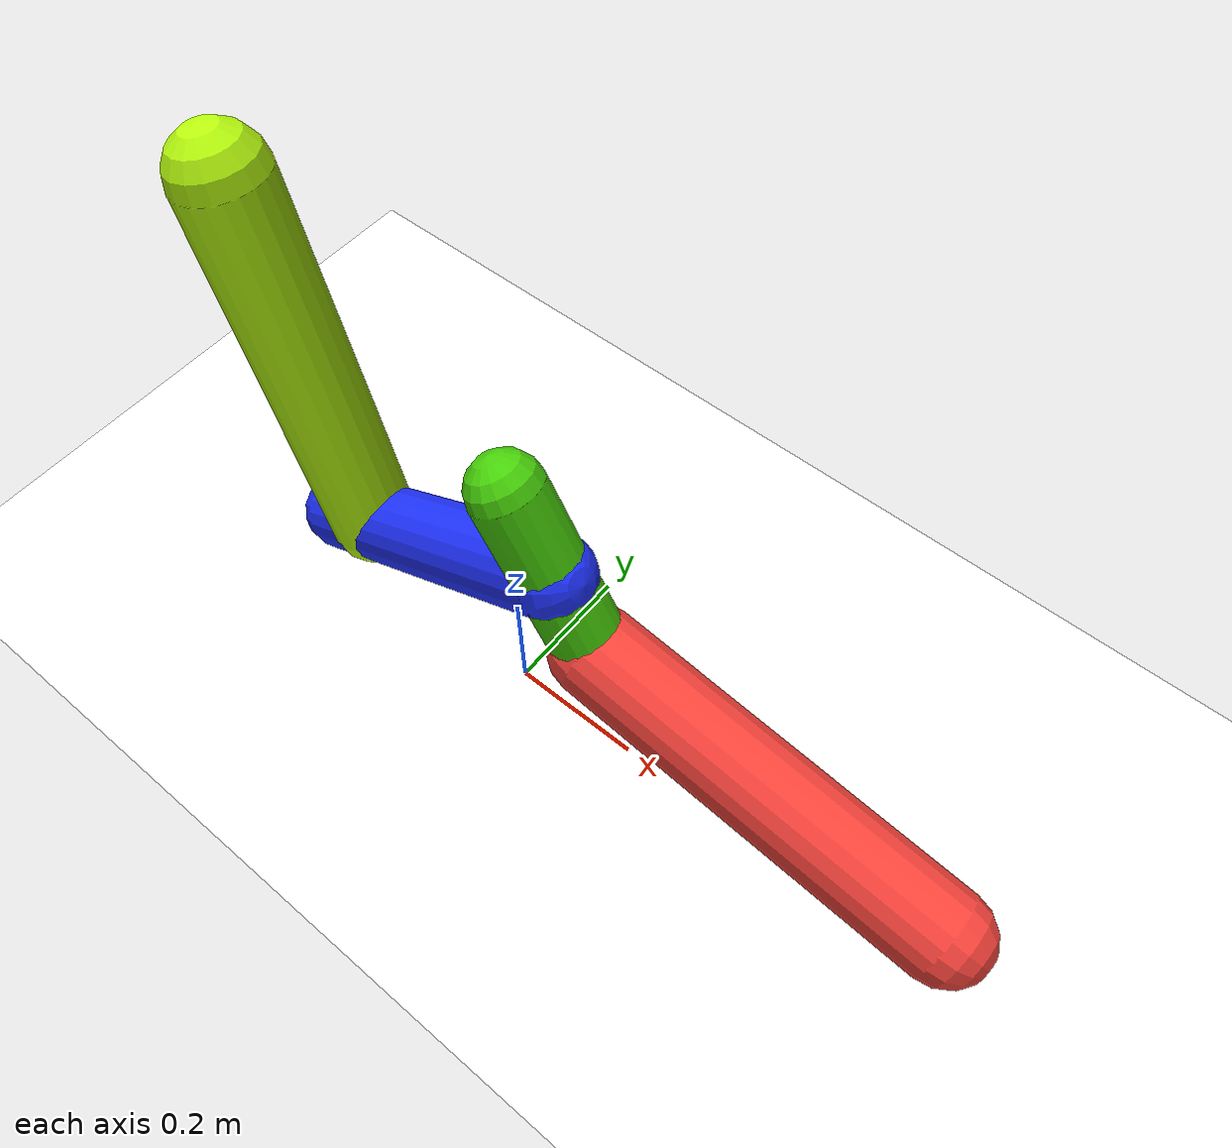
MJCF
<mujoco model="morphology">
  <option timestep="0.01"/>
  <default>
    <default class="/"/>
    <default class="0/"/>
    <default class="0/1/"/>
    <default class="0/1/2/"/>
    <default class="0/3/"/>
  </default>
  <asset>
    <texture name="texplane" type="2d" builtin="checker" rgb1="0.10000000000000001 0.20000000000000001 0.29999999999999999" rgb2="0.20000000000000001 0.29999999999999999 0.40000000000000002" width="300" height="300"/>
    <material name="MatPlane" class="/" texture="texplane" texrepeat="20 20" specular="1" shininess="1" reflectance="0.5"/>
  </asset>
  <worldbody>
    <light name="//unnamed_light_0" class="/" directional="true" pos="0 0 1.5" dir="0 0 -1.3" cutoff="100" exponent="1" diffuse="1 1 1" specular="0.10000000000000001 0.10000000000000001 0.10000000000000001"/>
    <geom name="ground" class="/" type="plane" size="15 15 0.5" material="MatPlane" rgba="1 1 1 1"/>
    <site name="body" class="/" size="9.9999999999999995e-07 9.9999999999999995e-07 9.9999999999999995e-07" pos="0 0 0.47597241997718809"/>
    <body pos="0 0 0.47597241997718809" name="0/">
      <joint name="0/rootx/" class="/" type="slide" axis="1 0 0" limited="false" stiffness="0" armature="0" damping="0"/>
      <joint name="0/rootz/" class="/" type="slide" axis="0 0 1" limited="false" stiffness="0" armature="0" damping="0"/>
      <joint name="0/rooty/" class="/" type="hinge" axis="0 1 0" limited="false" stiffness="0" armature="0" damping="0"/>
      <geom name="0/geom" class="0/" type="capsule" contype="1" conaffinity="1" condim="3" size="0.05319527375708194" rgba="0.27440601608989323 0.81395299352031014 0.029619165562050576 1" friction="0.59999999999999998 0.10000000000000001 0.10000000000000001" fromto="0 0 0 0.14692882741848123 0 -0.25926622898489471"/>
      <site name="0/end0" class="0/" size="0.0050000000000000001" pos="0.14692882741848123 0 -0.25926622898489471"/>
      <site name="0/attach1" class="0/" size="9.9999999999999995e-07 9.9999999999999995e-07 9.9999999999999995e-07" pos="0.069905024376010691 0 -0.12335232217871585"/>
      <body pos="0.069905024376010691 0 -0.12335232217871585" name="0/1/">
        <joint name="0/1/joint/" class="0/" type="hinge" axis="0 1 0" limited="true" range="-40.776455981154882 40.776455981154882"/>
        <geom name="0/1/geom" class="0/1/" type="capsule" contype="1" conaffinity="1" condim="3" size="0.05980422214264268" rgba="0.11901122383155305 0.19569481309020043 0.99883253026907004 1" friction="0.59999999999999998 0.10000000000000001 0.10000000000000001" fromto="0 0 0 -0.44006650512960555 0 -0.25262009361313786"/>
        <site name="0/1/end1" class="0/1/" size="0.0050000000000000001" pos="-0.44006650512960555 0 -0.25262009361313786"/>
        <site name="0/1/attach2" class="0/1/" size="9.9999999999999995e-07 9.9999999999999995e-07 9.9999999999999995e-07" pos="-0.36213720559697288 0 -0.20788479403076682"/>
        <body pos="-0.36213720559697288 0 -0.20788479403076682" name="0/1/2/">
          <joint name="0/1/2/joint/" class="0/1/" type="hinge" axis="0 1 0" limited="true" range="-47.168255346449385 47.168255346449385"/>
          <geom name="0/1/2/geom" class="0/1/2/" type="capsule" contype="1" conaffinity="1" condim="3" size="0.065029280746664336" rgba="0.70358218806777384 0.96768143013484265 0.044620421272151933 1" friction="0.59999999999999998 0.10000000000000001 0.10000000000000001" fromto="0 0 0 -0.1212089103986026 0 0.58165426873372761"/>
          <site name="0/1/2/end2" class="0/1/2/" size="0.0050000000000000001" pos="-0.1212089103986026 0 0.58165426873372761"/>
        </body>
      </body>
      <site name="0/attach3" class="0/" size="9.9999999999999995e-07 9.9999999999999995e-07 9.9999999999999995e-07" pos="0.13635015644097015 0 -0.24059942152307826"/>
      <body pos="0.13635015644097015 0 -0.24059942152307826" name="0/3/">
        <joint name="0/3/joint/" class="0/" type="hinge" axis="0 1 0" limited="true" range="-44.354153508574043 44.354153508574043"/>
        <geom name="0/3/geom" class="0/3/" type="capsule" contype="1" conaffinity="1" condim="3" size="0.065296402263917697" rgba="0.95614747126535682 0.25735056276028279 0.22509091212723897 1" friction="0.59999999999999998 0.10000000000000001 0.10000000000000001" fromto="0 0 0 0.5594987871675956 0 -0.084388615426117752"/>
        <site name="0/3/end3" class="0/3/" size="0.0050000000000000001" pos="0.5594987871675956 0 -0.084388615426117752"/>
      </body>
      <camera name="0/side" class="0/" mode="trackcom" pos="0.40000000000000002 -4 0.20000000000000001" quat="0.70699999999999996 0.70699999999999996 0 0"/>
    </body>
  </worldbody>
  <actuator>
    <motor name="0/1/motor" class="0/1/" ctrllimited="true" ctrlrange="-1 1" gear="61" joint="0/1/joint/"/>
    <motor name="0/1/2/motor" class="0/1/2/" ctrllimited="true" ctrlrange="-1 1" gear="52" joint="0/1/2/joint/"/>
    <motor name="0/3/motor" class="0/3/" ctrllimited="true" ctrlrange="-1 1" gear="65" joint="0/3/joint/"/>
  </actuator>
  <sensor>
    <subtreelinvel name="velocity" body="0/"/>
  </sensor>
</mujoco>
